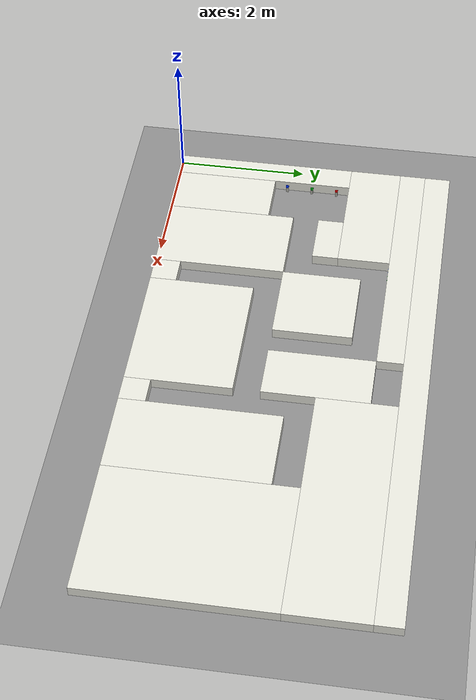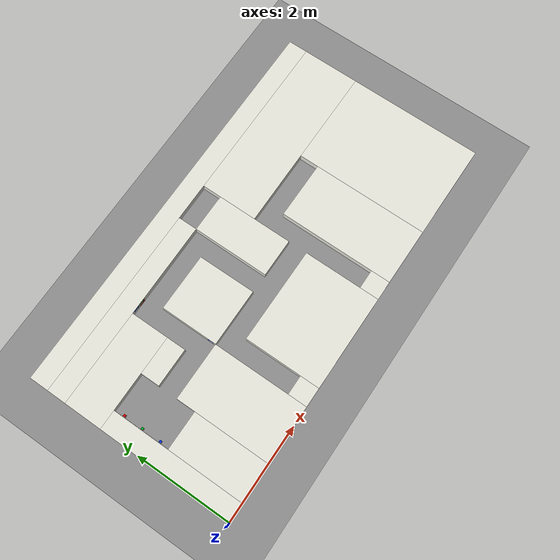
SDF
<sdf version="1.9">
 <world name="ros2_world">
  <model name="ground_plane">
   <static>true</static>
   <link name="link">
    <collision name="collision">
     <geometry><plane><normal>0 0 1</normal><size>30 30</size></plane></geometry>
    </collision>
    <visual name="visual">
     <geometry><plane><normal>0 0 1</normal><size>30 30</size></plane></geometry>
     <material><ambient>0.55 0.55 0.55 1</ambient><diffuse>0.55 0.55 0.55 1</diffuse></material>
    </visual>
   </link>
  </model>
  <model name="paredes">
   <static>true</static>
   <link name="bloque_0">
    <pose>4.2 4.2 0.085 0 0 0</pose>
    <collision name="colision"><geometry><box><size>8.4 0.4 0.17</size></box></geometry></collision>
    <visual name="visual">
     <geometry><box><size>8.4 0.4 0.17</size></box></geometry>
     <material><ambient>0.9 0.9 0.86 1</ambient><diffuse>0.9 0.9 0.86 1</diffuse></material>
    </visual>
   </link>
   <link name="bloque_1">
    <pose>2 3.8 0.085 0 0 0</pose>
    <collision name="colision"><geometry><box><size>4 0.4 0.17</size></box></geometry></collision>
    <visual name="visual">
     <geometry><box><size>4 0.4 0.17</size></box></geometry>
     <material><ambient>0.9 0.9 0.86 1</ambient><diffuse>0.9 0.9 0.86 1</diffuse></material>
    </visual>
   </link>
   <link name="bloque_2">
    <pose>6.6 3.4 0.085 0 0 0</pose>
    <collision name="colision"><geometry><box><size>3.6 1.2 0.17</size></box></geometry></collision>
    <visual name="visual">
     <geometry><box><size>3.6 1.2 0.17</size></box></geometry>
     <material><ambient>0.9 0.9 0.86 1</ambient><diffuse>0.9 0.9 0.86 1</diffuse></material>
    </visual>
   </link>
   <link name="bloque_3">
    <pose>1 3.2 0.085 0 0 0</pose>
    <collision name="colision"><geometry><box><size>2 0.8 0.17</size></box></geometry></collision>
    <visual name="visual">
     <geometry><box><size>2 0.8 0.17</size></box></geometry>
     <material><ambient>0.9 0.9 0.86 1</ambient><diffuse>0.9 0.9 0.86 1</diffuse></material>
    </visual>
   </link>
   <link name="bloque_4">
    <pose>4.4 2.8 0.085 0 0 0</pose>
    <collision name="colision"><geometry><box><size>0.8 1.6 0.17</size></box></geometry></collision>
    <visual name="visual">
     <geometry><box><size>0.8 1.6 0.17</size></box></geometry>
     <material><ambient>0.9 0.9 0.86 1</ambient><diffuse>0.9 0.9 0.86 1</diffuse></material>
    </visual>
   </link>
   <link name="bloque_5">
    <pose>3 2.6 0.085 0 0 0</pose>
    <collision name="colision"><geometry><box><size>1.2 1.2 0.17</size></box></geometry></collision>
    <visual name="visual">
     <geometry><box><size>1.2 1.2 0.17</size></box></geometry>
     <material><ambient>0.9 0.9 0.86 1</ambient><diffuse>0.9 0.9 0.86 1</diffuse></material>
    </visual>
   </link>
   <link name="bloque_6">
    <pose>0.2 1.4 0.085 0 0 0</pose>
    <collision name="colision"><geometry><box><size>0.4 2.8 0.17</size></box></geometry></collision>
    <visual name="visual">
     <geometry><box><size>0.4 2.8 0.17</size></box></geometry>
     <material><ambient>0.9 0.9 0.86 1</ambient><diffuse>0.9 0.9 0.86 1</diffuse></material>
    </visual>
   </link>
   <link name="bloque_7">
    <pose>1.6 2.6 0.085 0 0 0</pose>
    <collision name="colision"><geometry><box><size>0.8 0.4 0.17</size></box></geometry></collision>
    <visual name="visual">
     <geometry><box><size>0.8 0.4 0.17</size></box></geometry>
     <material><ambient>0.9 0.9 0.86 1</ambient><diffuse>0.9 0.9 0.86 1</diffuse></material>
    </visual>
   </link>
   <link name="bloque_8">
    <pose>7.4 1.4 0.085 0 0 0</pose>
    <collision name="colision"><geometry><box><size>2 2.8 0.17</size></box></geometry></collision>
    <visual name="visual">
     <geometry><box><size>2 2.8 0.17</size></box></geometry>
     <material><ambient>0.9 0.9 0.86 1</ambient><diffuse>0.9 0.9 0.86 1</diffuse></material>
    </visual>
   </link>
   <link name="bloque_9">
    <pose>5.8 1.2 0.085 0 0 0</pose>
    <collision name="colision"><geometry><box><size>1.2 2.4 0.17</size></box></geometry></collision>
    <visual name="visual">
     <geometry><box><size>1.2 2.4 0.17</size></box></geometry>
     <material><ambient>0.9 0.9 0.86 1</ambient><diffuse>0.9 0.9 0.86 1</diffuse></material>
    </visual>
   </link>
   <link name="bloque_10">
    <pose>1.8 1 0.085 0 0 0</pose>
    <collision name="colision"><geometry><box><size>1.2 2 0.17</size></box></geometry></collision>
    <visual name="visual">
     <geometry><box><size>1.2 2 0.17</size></box></geometry>
     <material><ambient>0.9 0.9 0.86 1</ambient><diffuse>0.9 0.9 0.86 1</diffuse></material>
    </visual>
   </link>
   <link name="bloque_11">
    <pose>0.8 0.8 0.085 0 0 0</pose>
    <collision name="colision"><geometry><box><size>0.8 1.6 0.17</size></box></geometry></collision>
    <visual name="visual">
     <geometry><box><size>0.8 1.6 0.17</size></box></geometry>
     <material><ambient>0.9 0.9 0.86 1</ambient><diffuse>0.9 0.9 0.86 1</diffuse></material>
    </visual>
   </link>
   <link name="bloque_12">
    <pose>3.8 0.8 0.085 0 0 0</pose>
    <collision name="colision"><geometry><box><size>2 1.6 0.17</size></box></geometry></collision>
    <visual name="visual">
     <geometry><box><size>2 1.6 0.17</size></box></geometry>
     <material><ambient>0.9 0.9 0.86 1</ambient><diffuse>0.9 0.9 0.86 1</diffuse></material>
    </visual>
   </link>
   <link name="bloque_13">
    <pose>2.6 0.2 0.085 0 0 0</pose>
    <collision name="colision"><geometry><box><size>0.4 0.4 0.17</size></box></geometry></collision>
    <visual name="visual">
     <geometry><box><size>0.4 0.4 0.17</size></box></geometry>
     <material><ambient>0.9 0.9 0.86 1</ambient><diffuse>0.9 0.9 0.86 1</diffuse></material>
    </visual>
   </link>
   <link name="bloque_14">
    <pose>5 0.2 0.085 0 0 0</pose>
    <collision name="colision"><geometry><box><size>0.4 0.4 0.17</size></box></geometry></collision>
    <visual name="visual">
     <geometry><box><size>0.4 0.4 0.17</size></box></geometry>
     <material><ambient>0.9 0.9 0.86 1</ambient><diffuse>0.9 0.9 0.86 1</diffuse></material>
    </visual>
   </link>
  </model>
  <model name="flechas">
   <static>true</static>
   <link name="flecha_0">
    <pose>2.12 3.5985 0.115 0 0 0</pose>
    <visual name="p0">
     <pose>-0.025 0 0 0 0 0</pose>
     <geometry><box><size>0.1 0.002 0.03</size></box></geometry>
     <material><ambient>0 0.2 1 1</ambient><diffuse>0 0.2 1 1</diffuse></material>
    </visual>
    <visual name="p1">
     <pose>0.026 0 0 0 0 0</pose>
     <geometry><box><size>0.002 0.002 0.07</size></box></geometry>
     <material><ambient>0 0.2 1 1</ambient><diffuse>0 0.2 1 1</diffuse></material>
    </visual>
    <visual name="p2">
     <pose>0.028 0 0 0 0 0</pose>
     <geometry><box><size>0.002 0.002 0.0672</size></box></geometry>
     <material><ambient>0 0.2 1 1</ambient><diffuse>0 0.2 1 1</diffuse></material>
    </visual>
    <visual name="p3">
     <pose>0.03 0 0 0 0 0</pose>
     <geometry><box><size>0.002 0.002 0.0644</size></box></geometry>
     <material><ambient>0 0.2 1 1</ambient><diffuse>0 0.2 1 1</diffuse></material>
    </visual>
    <visual name="p4">
     <pose>0.032 0 0 0 0 0</pose>
     <geometry><box><size>0.002 0.002 0.0616</size></box></geometry>
     <material><ambient>0 0.2 1 1</ambient><diffuse>0 0.2 1 1</diffuse></material>
    </visual>
    <visual name="p5">
     <pose>0.034 0 0 0 0 0</pose>
     <geometry><box><size>0.002 0.002 0.0588</size></box></geometry>
     <material><ambient>0 0.2 1 1</ambient><diffuse>0 0.2 1 1</diffuse></material>
    </visual>
    <visual name="p6">
     <pose>0.036 0 0 0 0 0</pose>
     <geometry><box><size>0.002 0.002 0.056</size></box></geometry>
     <material><ambient>0 0.2 1 1</ambient><diffuse>0 0.2 1 1</diffuse></material>
    </visual>
    <visual name="p7">
     <pose>0.038 0 0 0 0 0</pose>
     <geometry><box><size>0.002 0.002 0.0532</size></box></geometry>
     <material><ambient>0 0.2 1 1</ambient><diffuse>0 0.2 1 1</diffuse></material>
    </visual>
    <visual name="p8">
     <pose>0.04 0 0 0 0 0</pose>
     <geometry><box><size>0.002 0.002 0.0504</size></box></geometry>
     <material><ambient>0 0.2 1 1</ambient><diffuse>0 0.2 1 1</diffuse></material>
    </visual>
    <visual name="p9">
     <pose>0.042 0 0 0 0 0</pose>
     <geometry><box><size>0.002 0.002 0.0476</size></box></geometry>
     <material><ambient>0 0.2 1 1</ambient><diffuse>0 0.2 1 1</diffuse></material>
    </visual>
    <visual name="p10">
     <pose>0.044 0 0 0 0 0</pose>
     <geometry><box><size>0.002 0.002 0.0448</size></box></geometry>
     <material><ambient>0 0.2 1 1</ambient><diffuse>0 0.2 1 1</diffuse></material>
    </visual>
    <visual name="p11">
     <pose>0.046 0 0 0 0 0</pose>
     <geometry><box><size>0.002 0.002 0.042</size></box></geometry>
     <material><ambient>0 0.2 1 1</ambient><diffuse>0 0.2 1 1</diffuse></material>
    </visual>
    <visual name="p12">
     <pose>0.048 0 0 0 0 0</pose>
     <geometry><box><size>0.002 0.002 0.0392</size></box></geometry>
     <material><ambient>0 0.2 1 1</ambient><diffuse>0 0.2 1 1</diffuse></material>
    </visual>
    <visual name="p13">
     <pose>0.05 0 0 0 0 0</pose>
     <geometry><box><size>0.002 0.002 0.0364</size></box></geometry>
     <material><ambient>0 0.2 1 1</ambient><diffuse>0 0.2 1 1</diffuse></material>
    </visual>
    <visual name="p14">
     <pose>0.052 0 0 0 0 0</pose>
     <geometry><box><size>0.002 0.002 0.0336</size></box></geometry>
     <material><ambient>0 0.2 1 1</ambient><diffuse>0 0.2 1 1</diffuse></material>
    </visual>
    <visual name="p15">
     <pose>0.054 0 0 0 0 0</pose>
     <geometry><box><size>0.002 0.002 0.0308</size></box></geometry>
     <material><ambient>0 0.2 1 1</ambient><diffuse>0 0.2 1 1</diffuse></material>
    </visual>
    <visual name="p16">
     <pose>0.056 0 0 0 0 0</pose>
     <geometry><box><size>0.002 0.002 0.028</size></box></geometry>
     <material><ambient>0 0.2 1 1</ambient><diffuse>0 0.2 1 1</diffuse></material>
    </visual>
    <visual name="p17">
     <pose>0.058 0 0 0 0 0</pose>
     <geometry><box><size>0.002 0.002 0.0252</size></box></geometry>
     <material><ambient>0 0.2 1 1</ambient><diffuse>0 0.2 1 1</diffuse></material>
    </visual>
    <visual name="p18">
     <pose>0.06 0 0 0 0 0</pose>
     <geometry><box><size>0.002 0.002 0.0224</size></box></geometry>
     <material><ambient>0 0.2 1 1</ambient><diffuse>0 0.2 1 1</diffuse></material>
    </visual>
    <visual name="p19">
     <pose>0.062 0 0 0 0 0</pose>
     <geometry><box><size>0.002 0.002 0.0196</size></box></geometry>
     <material><ambient>0 0.2 1 1</ambient><diffuse>0 0.2 1 1</diffuse></material>
    </visual>
    <visual name="p20">
     <pose>0.064 0 0 0 0 0</pose>
     <geometry><box><size>0.002 0.002 0.0168</size></box></geometry>
     <material><ambient>0 0.2 1 1</ambient><diffuse>0 0.2 1 1</diffuse></material>
    </visual>
    <visual name="p21">
     <pose>0.066 0 0 0 0 0</pose>
     <geometry><box><size>0.002 0.002 0.014</size></box></geometry>
     <material><ambient>0 0.2 1 1</ambient><diffuse>0 0.2 1 1</diffuse></material>
    </visual>
    <visual name="p22">
     <pose>0.068 0 0 0 0 0</pose>
     <geometry><box><size>0.002 0.002 0.0112</size></box></geometry>
     <material><ambient>0 0.2 1 1</ambient><diffuse>0 0.2 1 1</diffuse></material>
    </visual>
    <visual name="p23">
     <pose>0.07 0 0 0 0 0</pose>
     <geometry><box><size>0.002 0.002 0.0084</size></box></geometry>
     <material><ambient>0 0.2 1 1</ambient><diffuse>0 0.2 1 1</diffuse></material>
    </visual>
    <visual name="p24">
     <pose>0.072 0 0 0 0 0</pose>
     <geometry><box><size>0.002 0.002 0.0056</size></box></geometry>
     <material><ambient>0 0.2 1 1</ambient><diffuse>0 0.2 1 1</diffuse></material>
    </visual>
    <visual name="p25">
     <pose>0.074 0 0 0 0 0</pose>
     <geometry><box><size>0.002 0.002 0.0028</size></box></geometry>
     <material><ambient>0 0.2 1 1</ambient><diffuse>0 0.2 1 1</diffuse></material>
    </visual>
   </link>
   <link name="flecha_1">
    <pose>2.28 3.5985 0.125 0 0 0</pose>
    <visual name="p0">
     <pose>-0.025 0 0 0 0 0</pose>
     <geometry><box><size>0.1 0.002 0.03</size></box></geometry>
     <material><ambient>0 0.7 0.1 1</ambient><diffuse>0 0.7 0.1 1</diffuse></material>
    </visual>
    <visual name="p1">
     <pose>0.026 0 0 0 0 0</pose>
     <geometry><box><size>0.002 0.002 0.07</size></box></geometry>
     <material><ambient>0 0.7 0.1 1</ambient><diffuse>0 0.7 0.1 1</diffuse></material>
    </visual>
    <visual name="p2">
     <pose>0.028 0 0 0 0 0</pose>
     <geometry><box><size>0.002 0.002 0.0672</size></box></geometry>
     <material><ambient>0 0.7 0.1 1</ambient><diffuse>0 0.7 0.1 1</diffuse></material>
    </visual>
    <visual name="p3">
     <pose>0.03 0 0 0 0 0</pose>
     <geometry><box><size>0.002 0.002 0.0644</size></box></geometry>
     <material><ambient>0 0.7 0.1 1</ambient><diffuse>0 0.7 0.1 1</diffuse></material>
    </visual>
    <visual name="p4">
     <pose>0.032 0 0 0 0 0</pose>
     <geometry><box><size>0.002 0.002 0.0616</size></box></geometry>
     <material><ambient>0 0.7 0.1 1</ambient><diffuse>0 0.7 0.1 1</diffuse></material>
    </visual>
    <visual name="p5">
     <pose>0.034 0 0 0 0 0</pose>
     <geometry><box><size>0.002 0.002 0.0588</size></box></geometry>
     <material><ambient>0 0.7 0.1 1</ambient><diffuse>0 0.7 0.1 1</diffuse></material>
    </visual>
    <visual name="p6">
     <pose>0.036 0 0 0 0 0</pose>
     <geometry><box><size>0.002 0.002 0.056</size></box></geometry>
     <material><ambient>0 0.7 0.1 1</ambient><diffuse>0 0.7 0.1 1</diffuse></material>
    </visual>
    <visual name="p7">
     <pose>0.038 0 0 0 0 0</pose>
     <geometry><box><size>0.002 0.002 0.0532</size></box></geometry>
     <material><ambient>0 0.7 0.1 1</ambient><diffuse>0 0.7 0.1 1</diffuse></material>
    </visual>
    <visual name="p8">
     <pose>0.04 0 0 0 0 0</pose>
     <geometry><box><size>0.002 0.002 0.0504</size></box></geometry>
     <material><ambient>0 0.7 0.1 1</ambient><diffuse>0 0.7 0.1 1</diffuse></material>
    </visual>
    <visual name="p9">
     <pose>0.042 0 0 0 0 0</pose>
     <geometry><box><size>0.002 0.002 0.0476</size></box></geometry>
     <material><ambient>0 0.7 0.1 1</ambient><diffuse>0 0.7 0.1 1</diffuse></material>
    </visual>
    <visual name="p10">
     <pose>0.044 0 0 0 0 0</pose>
     <geometry><box><size>0.002 0.002 0.0448</size></box></geometry>
     <material><ambient>0 0.7 0.1 1</ambient><diffuse>0 0.7 0.1 1</diffuse></material>
    </visual>
    <visual name="p11">
     <pose>0.046 0 0 0 0 0</pose>
     <geometry><box><size>0.002 0.002 0.042</size></box></geometry>
     <material><ambient>0 0.7 0.1 1</ambient><diffuse>0 0.7 0.1 1</diffuse></material>
    </visual>
    <visual name="p12">
     <pose>0.048 0 0 0 0 0</pose>
     <geometry><box><size>0.002 0.002 0.0392</size></box></geometry>
     <material><ambient>0 0.7 0.1 1</ambient><diffuse>0 0.7 0.1 1</diffuse></material>
    </visual>
    <visual name="p13">
     <pose>0.05 0 0 0 0 0</pose>
     <geometry><box><size>0.002 0.002 0.0364</size></box></geometry>
     <material><ambient>0 0.7 0.1 1</ambient><diffuse>0 0.7 0.1 1</diffuse></material>
    </visual>
    <visual name="p14">
     <pose>0.052 0 0 0 0 0</pose>
     <geometry><box><size>0.002 0.002 0.0336</size></box></geometry>
     <material><ambient>0 0.7 0.1 1</ambient><diffuse>0 0.7 0.1 1</diffuse></material>
    </visual>
    <visual name="p15">
     <pose>0.054 0 0 0 0 0</pose>
     <geometry><box><size>0.002 0.002 0.0308</size></box></geometry>
     <material><ambient>0 0.7 0.1 1</ambient><diffuse>0 0.7 0.1 1</diffuse></material>
    </visual>
    <visual name="p16">
     <pose>0.056 0 0 0 0 0</pose>
     <geometry><box><size>0.002 0.002 0.028</size></box></geometry>
     <material><ambient>0 0.7 0.1 1</ambient><diffuse>0 0.7 0.1 1</diffuse></material>
    </visual>
    <visual name="p17">
     <pose>0.058 0 0 0 0 0</pose>
     <geometry><box><size>0.002 0.002 0.0252</size></box></geometry>
     <material><ambient>0 0.7 0.1 1</ambient><diffuse>0 0.7 0.1 1</diffuse></material>
    </visual>
    <visual name="p18">
     <pose>0.06 0 0 0 0 0</pose>
     <geometry><box><size>0.002 0.002 0.0224</size></box></geometry>
     <material><ambient>0 0.7 0.1 1</ambient><diffuse>0 0.7 0.1 1</diffuse></material>
    </visual>
    <visual name="p19">
     <pose>0.062 0 0 0 0 0</pose>
     <geometry><box><size>0.002 0.002 0.0196</size></box></geometry>
     <material><ambient>0 0.7 0.1 1</ambient><diffuse>0 0.7 0.1 1</diffuse></material>
    </visual>
    <visual name="p20">
     <pose>0.064 0 0 0 0 0</pose>
     <geometry><box><size>0.002 0.002 0.0168</size></box></geometry>
     <material><ambient>0 0.7 0.1 1</ambient><diffuse>0 0.7 0.1 1</diffuse></material>
    </visual>
    <visual name="p21">
     <pose>0.066 0 0 0 0 0</pose>
     <geometry><box><size>0.002 0.002 0.014</size></box></geometry>
     <material><ambient>0 0.7 0.1 1</ambient><diffuse>0 0.7 0.1 1</diffuse></material>
    </visual>
    <visual name="p22">
     <pose>0.068 0 0 0 0 0</pose>
     <geometry><box><size>0.002 0.002 0.0112</size></box></geometry>
     <material><ambient>0 0.7 0.1 1</ambient><diffuse>0 0.7 0.1 1</diffuse></material>
    </visual>
    <visual name="p23">
     <pose>0.07 0 0 0 0 0</pose>
     <geometry><box><size>0.002 0.002 0.0084</size></box></geometry>
     <material><ambient>0 0.7 0.1 1</ambient><diffuse>0 0.7 0.1 1</diffuse></material>
    </visual>
    <visual name="p24">
     <pose>0.072 0 0 0 0 0</pose>
     <geometry><box><size>0.002 0.002 0.0056</size></box></geometry>
     <material><ambient>0 0.7 0.1 1</ambient><diffuse>0 0.7 0.1 1</diffuse></material>
    </visual>
    <visual name="p25">
     <pose>0.074 0 0 0 0 0</pose>
     <geometry><box><size>0.002 0.002 0.0028</size></box></geometry>
     <material><ambient>0 0.7 0.1 1</ambient><diffuse>0 0.7 0.1 1</diffuse></material>
    </visual>
   </link>
   <link name="flecha_2">
    <pose>2.28 3.5985 0.045 0 0 0</pose>
    <visual name="p0">
     <pose>-0.025 0 0 0 0 0</pose>
     <geometry><box><size>0.1 0.002 0.03</size></box></geometry>
     <material><ambient>1 0 0 1</ambient><diffuse>1 0 0 1</diffuse></material>
    </visual>
    <visual name="p1">
     <pose>0.026 0 0 0 0 0</pose>
     <geometry><box><size>0.002 0.002 0.07</size></box></geometry>
     <material><ambient>1 0 0 1</ambient><diffuse>1 0 0 1</diffuse></material>
    </visual>
    <visual name="p2">
     <pose>0.028 0 0 0 0 0</pose>
     <geometry><box><size>0.002 0.002 0.0672</size></box></geometry>
     <material><ambient>1 0 0 1</ambient><diffuse>1 0 0 1</diffuse></material>
    </visual>
    <visual name="p3">
     <pose>0.03 0 0 0 0 0</pose>
     <geometry><box><size>0.002 0.002 0.0644</size></box></geometry>
     <material><ambient>1 0 0 1</ambient><diffuse>1 0 0 1</diffuse></material>
    </visual>
    <visual name="p4">
     <pose>0.032 0 0 0 0 0</pose>
     <geometry><box><size>0.002 0.002 0.0616</size></box></geometry>
     <material><ambient>1 0 0 1</ambient><diffuse>1 0 0 1</diffuse></material>
    </visual>
    <visual name="p5">
     <pose>0.034 0 0 0 0 0</pose>
     <geometry><box><size>0.002 0.002 0.0588</size></box></geometry>
     <material><ambient>1 0 0 1</ambient><diffuse>1 0 0 1</diffuse></material>
    </visual>
    <visual name="p6">
     <pose>0.036 0 0 0 0 0</pose>
     <geometry><box><size>0.002 0.002 0.056</size></box></geometry>
     <material><ambient>1 0 0 1</ambient><diffuse>1 0 0 1</diffuse></material>
    </visual>
    <visual name="p7">
     <pose>0.038 0 0 0 0 0</pose>
     <geometry><box><size>0.002 0.002 0.0532</size></box></geometry>
     <material><ambient>1 0 0 1</ambient><diffuse>1 0 0 1</diffuse></material>
    </visual>
    <visual name="p8">
     <pose>0.04 0 0 0 0 0</pose>
     <geometry><box><size>0.002 0.002 0.0504</size></box></geometry>
     <material><ambient>1 0 0 1</ambient><diffuse>1 0 0 1</diffuse></material>
    </visual>
    <visual name="p9">
     <pose>0.042 0 0 0 0 0</pose>
     <geometry><box><size>0.002 0.002 0.0476</size></box></geometry>
     <material><ambient>1 0 0 1</ambient><diffuse>1 0 0 1</diffuse></material>
    </visual>
    <visual name="p10">
     <pose>0.044 0 0 0 0 0</pose>
     <geometry><box><size>0.002 0.002 0.0448</size></box></geometry>
     <material><ambient>1 0 0 1</ambient><diffuse>1 0 0 1</diffuse></material>
    </visual>
    <visual name="p11">
     <pose>0.046 0 0 0 0 0</pose>
     <geometry><box><size>0.002 0.002 0.042</size></box></geometry>
     <material><ambient>1 0 0 1</ambient><diffuse>1 0 0 1</diffuse></material>
    </visual>
    <visual name="p12">
     <pose>0.048 0 0 0 0 0</pose>
     <geometry><box><size>0.002 0.002 0.0392</size></box></geometry>
     <material><ambient>1 0 0 1</ambient><diffuse>1 0 0 1</diffuse></material>
    </visual>
    <visual name="p13">
     <pose>0.05 0 0 0 0 0</pose>
     <geometry><box><size>0.002 0.002 0.0364</size></box></geometry>
     <material><ambient>1 0 0 1</ambient><diffuse>1 0 0 1</diffuse></material>
    </visual>
    <visual name="p14">
     <pose>0.052 0 0 0 0 0</pose>
     <geometry><box><size>0.002 0.002 0.0336</size></box></geometry>
     <material><ambient>1 0 0 1</ambient><diffuse>1 0 0 1</diffuse></material>
    </visual>
    <visual name="p15">
     <pose>0.054 0 0 0 0 0</pose>
     <geometry><box><size>0.002 0.002 0.0308</size></box></geometry>
     <material><ambient>1 0 0 1</ambient><diffuse>1 0 0 1</diffuse></material>
    </visual>
    <visual name="p16">
     <pose>0.056 0 0 0 0 0</pose>
     <geometry><box><size>0.002 0.002 0.028</size></box></geometry>
     <material><ambient>1 0 0 1</ambient><diffuse>1 0 0 1</diffuse></material>
    </visual>
    <visual name="p17">
     <pose>0.058 0 0 0 0 0</pose>
     <geometry><box><size>0.002 0.002 0.0252</size></box></geometry>
     <material><ambient>1 0 0 1</ambient><diffuse>1 0 0 1</diffuse></material>
    </visual>
    <visual name="p18">
     <pose>0.06 0 0 0 0 0</pose>
     <geometry><box><size>0.002 0.002 0.0224</size></box></geometry>
     <material><ambient>1 0 0 1</ambient><diffuse>1 0 0 1</diffuse></material>
    </visual>
    <visual name="p19">
     <pose>0.062 0 0 0 0 0</pose>
     <geometry><box><size>0.002 0.002 0.0196</size></box></geometry>
     <material><ambient>1 0 0 1</ambient><diffuse>1 0 0 1</diffuse></material>
    </visual>
    <visual name="p20">
     <pose>0.064 0 0 0 0 0</pose>
     <geometry><box><size>0.002 0.002 0.0168</size></box></geometry>
     <material><ambient>1 0 0 1</ambient><diffuse>1 0 0 1</diffuse></material>
    </visual>
    <visual name="p21">
     <pose>0.066 0 0 0 0 0</pose>
     <geometry><box><size>0.002 0.002 0.014</size></box></geometry>
     <material><ambient>1 0 0 1</ambient><diffuse>1 0 0 1</diffuse></material>
    </visual>
    <visual name="p22">
     <pose>0.068 0 0 0 0 0</pose>
     <geometry><box><size>0.002 0.002 0.0112</size></box></geometry>
     <material><ambient>1 0 0 1</ambient><diffuse>1 0 0 1</diffuse></material>
    </visual>
    <visual name="p23">
     <pose>0.07 0 0 0 0 0</pose>
     <geometry><box><size>0.002 0.002 0.0084</size></box></geometry>
     <material><ambient>1 0 0 1</ambient><diffuse>1 0 0 1</diffuse></material>
    </visual>
    <visual name="p24">
     <pose>0.072 0 0 0 0 0</pose>
     <geometry><box><size>0.002 0.002 0.0056</size></box></geometry>
     <material><ambient>1 0 0 1</ambient><diffuse>1 0 0 1</diffuse></material>
    </visual>
    <visual name="p25">
     <pose>0.074 0 0 0 0 0</pose>
     <geometry><box><size>0.002 0.002 0.0028</size></box></geometry>
     <material><ambient>1 0 0 1</ambient><diffuse>1 0 0 1</diffuse></material>
    </visual>
   </link>
   <link name="flecha_7">
    <pose>2.3985 2.12 0.115 0 0 1.5708</pose>
    <visual name="p0">
     <pose>-0.025 0 0 0 0 0</pose>
     <geometry><box><size>0.1 0.002 0.03</size></box></geometry>
     <material><ambient>0 0.2 1 1</ambient><diffuse>0 0.2 1 1</diffuse></material>
    </visual>
    <visual name="p1">
     <pose>0.026 0 0 0 0 0</pose>
     <geometry><box><size>0.002 0.002 0.07</size></box></geometry>
     <material><ambient>0 0.2 1 1</ambient><diffuse>0 0.2 1 1</diffuse></material>
    </visual>
    <visual name="p2">
     <pose>0.028 0 0 0 0 0</pose>
     <geometry><box><size>0.002 0.002 0.0672</size></box></geometry>
     <material><ambient>0 0.2 1 1</ambient><diffuse>0 0.2 1 1</diffuse></material>
    </visual>
    <visual name="p3">
     <pose>0.03 0 0 0 0 0</pose>
     <geometry><box><size>0.002 0.002 0.0644</size></box></geometry>
     <material><ambient>0 0.2 1 1</ambient><diffuse>0 0.2 1 1</diffuse></material>
    </visual>
    <visual name="p4">
     <pose>0.032 0 0 0 0 0</pose>
     <geometry><box><size>0.002 0.002 0.0616</size></box></geometry>
     <material><ambient>0 0.2 1 1</ambient><diffuse>0 0.2 1 1</diffuse></material>
    </visual>
    <visual name="p5">
     <pose>0.034 0 0 0 0 0</pose>
     <geometry><box><size>0.002 0.002 0.0588</size></box></geometry>
     <material><ambient>0 0.2 1 1</ambient><diffuse>0 0.2 1 1</diffuse></material>
    </visual>
    <visual name="p6">
     <pose>0.036 0 0 0 0 0</pose>
     <geometry><box><size>0.002 0.002 0.056</size></box></geometry>
     <material><ambient>0 0.2 1 1</ambient><diffuse>0 0.2 1 1</diffuse></material>
    </visual>
    <visual name="p7">
     <pose>0.038 0 0 0 0 0</pose>
     <geometry><box><size>0.002 0.002 0.0532</size></box></geometry>
     <material><ambient>0 0.2 1 1</ambient><diffuse>0 0.2 1 1</diffuse></material>
    </visual>
    <visual name="p8">
     <pose>0.04 0 0 0 0 0</pose>
     <geometry><box><size>0.002 0.002 0.0504</size></box></geometry>
     <material><ambient>0 0.2 1 1</ambient><diffuse>0 0.2 1 1</diffuse></material>
    </visual>
    <visual name="p9">
     <pose>0.042 0 0 0 0 0</pose>
     <geometry><box><size>0.002 0.002 0.0476</size></box></geometry>
     <material><ambient>0 0.2 1 1</ambient><diffuse>0 0.2 1 1</diffuse></material>
    </visual>
    <visual name="p10">
     <pose>0.044 0 0 0 0 0</pose>
     <geometry><box><size>0.002 0.002 0.0448</size></box></geometry>
     <material><ambient>0 0.2 1 1</ambient><diffuse>0 0.2 1 1</diffuse></material>
    </visual>
    <visual name="p11">
     <pose>0.046 0 0 0 0 0</pose>
     <geometry><box><size>0.002 0.002 0.042</size></box></geometry>
     <material><ambient>0 0.2 1 1</ambient><diffuse>0 0.2 1 1</diffuse></material>
    </visual>
    <visual name="p12">
     <pose>0.048 0 0 0 0 0</pose>
     <geometry><box><size>0.002 0.002 0.0392</size></box></geometry>
     <material><ambient>0 0.2 1 1</ambient><diffuse>0 0.2 1 1</diffuse></material>
    </visual>
    <visual name="p13">
     <pose>0.05 0 0 0 0 0</pose>
     <geometry><box><size>0.002 0.002 0.0364</size></box></geometry>
     <material><ambient>0 0.2 1 1</ambient><diffuse>0 0.2 1 1</diffuse></material>
    </visual>
    <visual name="p14">
     <pose>0.052 0 0 0 0 0</pose>
     <geometry><box><size>0.002 0.002 0.0336</size></box></geometry>
     <material><ambient>0 0.2 1 1</ambient><diffuse>0 0.2 1 1</diffuse></material>
    </visual>
    <visual name="p15">
     <pose>0.054 0 0 0 0 0</pose>
     <geometry><box><size>0.002 0.002 0.0308</size></box></geometry>
     <material><ambient>0 0.2 1 1</ambient><diffuse>0 0.2 1 1</diffuse></material>
    </visual>
    <visual name="p16">
     <pose>0.056 0 0 0 0 0</pose>
     <geometry><box><size>0.002 0.002 0.028</size></box></geometry>
     <material><ambient>0 0.2 1 1</ambient><diffuse>0 0.2 1 1</diffuse></material>
    </visual>
    <visual name="p17">
     <pose>0.058 0 0 0 0 0</pose>
     <geometry><box><size>0.002 0.002 0.0252</size></box></geometry>
     <material><ambient>0 0.2 1 1</ambient><diffuse>0 0.2 1 1</diffuse></material>
    </visual>
    <visual name="p18">
     <pose>0.06 0 0 0 0 0</pose>
     <geometry><box><size>0.002 0.002 0.0224</size></box></geometry>
     <material><ambient>0 0.2 1 1</ambient><diffuse>0 0.2 1 1</diffuse></material>
    </visual>
    <visual name="p19">
     <pose>0.062 0 0 0 0 0</pose>
     <geometry><box><size>0.002 0.002 0.0196</size></box></geometry>
     <material><ambient>0 0.2 1 1</ambient><diffuse>0 0.2 1 1</diffuse></material>
    </visual>
    <visual name="p20">
     <pose>0.064 0 0 0 0 0</pose>
     <geometry><box><size>0.002 0.002 0.0168</size></box></geometry>
     <material><ambient>0 0.2 1 1</ambient><diffuse>0 0.2 1 1</diffuse></material>
    </visual>
    <visual name="p21">
     <pose>0.066 0 0 0 0 0</pose>
     <geometry><box><size>0.002 0.002 0.014</size></box></geometry>
     <material><ambient>0 0.2 1 1</ambient><diffuse>0 0.2 1 1</diffuse></material>
    </visual>
    <visual name="p22">
     <pose>0.068 0 0 0 0 0</pose>
     <geometry><box><size>0.002 0.002 0.0112</size></box></geometry>
     <material><ambient>0 0.2 1 1</ambient><diffuse>0 0.2 1 1</diffuse></material>
    </visual>
    <visual name="p23">
     <pose>0.07 0 0 0 0 0</pose>
     <geometry><box><size>0.002 0.002 0.0084</size></box></geometry>
     <material><ambient>0 0.2 1 1</ambient><diffuse>0 0.2 1 1</diffuse></material>
    </visual>
    <visual name="p24">
     <pose>0.072 0 0 0 0 0</pose>
     <geometry><box><size>0.002 0.002 0.0056</size></box></geometry>
     <material><ambient>0 0.2 1 1</ambient><diffuse>0 0.2 1 1</diffuse></material>
    </visual>
    <visual name="p25">
     <pose>0.074 0 0 0 0 0</pose>
     <geometry><box><size>0.002 0.002 0.0028</size></box></geometry>
     <material><ambient>0 0.2 1 1</ambient><diffuse>0 0.2 1 1</diffuse></material>
    </visual>
   </link>
  </model>
  <model name="soporte_canasto_rojo">
   <static>true</static>
   <pose>0.432 2.6 0.04425 0 0 0</pose>
   <link name="link">
    <collision name="colision"><geometry><box><size>0.036 0.036 0.0885</size></box></geometry></collision>
    <visual name="visual">
     <geometry><box><size>0.036 0.036 0.0885</size></box></geometry>
     <material><ambient>0.7 0.7 0.66 1</ambient><diffuse>0.7 0.7 0.66 1</diffuse></material>
    </visual>
   </link>
  </model>
  <model name="canasto_rojo">
   <static>true</static>
   <pose>0.432 2.6 0.0885 0 0 0</pose>
   <link name="link">
    <collision name="c_fondo">
     <pose>0 0 0.0005 0 0 0</pose>
     <geometry><box><size>0.044 0.044 0.001</size></box></geometry>
     <surface><friction><ode><mu>1</mu><mu2>1</mu2></ode></friction></surface>
    </collision>
    <visual name="v_fondo">
     <pose>0 0 0.0005 0 0 0</pose>
     <geometry><box><size>0.044 0.044 0.001</size></box></geometry>
     <material><ambient>1 0 0 1</ambient><diffuse>1 0 0 1</diffuse></material>
    </visual>
    <collision name="c_pared_n">
     <pose>0 0.021 0.01 0 0 0</pose>
     <geometry><box><size>0.044 0.002 0.02</size></box></geometry>
     <surface><friction><ode><mu>1</mu><mu2>1</mu2></ode></friction></surface>
    </collision>
    <visual name="v_pared_n">
     <pose>0 0.021 0.01 0 0 0</pose>
     <geometry><box><size>0.044 0.002 0.02</size></box></geometry>
     <material><ambient>1 0 0 1</ambient><diffuse>1 0 0 1</diffuse></material>
    </visual>
    <collision name="c_pared_s">
     <pose>0 -0.021 0.01 0 0 0</pose>
     <geometry><box><size>0.044 0.002 0.02</size></box></geometry>
     <surface><friction><ode><mu>1</mu><mu2>1</mu2></ode></friction></surface>
    </collision>
    <visual name="v_pared_s">
     <pose>0 -0.021 0.01 0 0 0</pose>
     <geometry><box><size>0.044 0.002 0.02</size></box></geometry>
     <material><ambient>1 0 0 1</ambient><diffuse>1 0 0 1</diffuse></material>
    </visual>
    <collision name="c_pared_e">
     <pose>0.021 0 0.01 0 0 0</pose>
     <geometry><box><size>0.002 0.04 0.02</size></box></geometry>
     <surface><friction><ode><mu>1</mu><mu2>1</mu2></ode></friction></surface>
    </collision>
    <visual name="v_pared_e">
     <pose>0.021 0 0.01 0 0 0</pose>
     <geometry><box><size>0.002 0.04 0.02</size></box></geometry>
     <material><ambient>1 0 0 1</ambient><diffuse>1 0 0 1</diffuse></material>
    </visual>
    <collision name="c_pared_o">
     <pose>-0.021 0 0.01 0 0 0</pose>
     <geometry><box><size>0.002 0.04 0.02</size></box></geometry>
     <surface><friction><ode><mu>1</mu><mu2>1</mu2></ode></friction></surface>
    </collision>
    <visual name="v_pared_o">
     <pose>-0.021 0 0.01 0 0 0</pose>
     <geometry><box><size>0.002 0.04 0.02</size></box></geometry>
     <material><ambient>1 0 0 1</ambient><diffuse>1 0 0 1</diffuse></material>
    </visual>
   </link>
  </model>
  <model name="soporte_canasto_verde">
   <static>true</static>
   <pose>0.432 2.2 0.04425 0 0 0</pose>
   <link name="link">
    <collision name="colision"><geometry><box><size>0.036 0.036 0.0885</size></box></geometry></collision>
    <visual name="visual">
     <geometry><box><size>0.036 0.036 0.0885</size></box></geometry>
     <material><ambient>0.7 0.7 0.66 1</ambient><diffuse>0.7 0.7 0.66 1</diffuse></material>
    </visual>
   </link>
  </model>
  <model name="canasto_verde">
   <static>true</static>
   <pose>0.432 2.2 0.0885 0 0 0</pose>
   <link name="link">
    <collision name="c_fondo">
     <pose>0 0 0.0005 0 0 0</pose>
     <geometry><box><size>0.044 0.044 0.001</size></box></geometry>
     <surface><friction><ode><mu>1</mu><mu2>1</mu2></ode></friction></surface>
    </collision>
    <visual name="v_fondo">
     <pose>0 0 0.0005 0 0 0</pose>
     <geometry><box><size>0.044 0.044 0.001</size></box></geometry>
     <material><ambient>0 0.7 0.1 1</ambient><diffuse>0 0.7 0.1 1</diffuse></material>
    </visual>
    <collision name="c_pared_n">
     <pose>0 0.021 0.01 0 0 0</pose>
     <geometry><box><size>0.044 0.002 0.02</size></box></geometry>
     <surface><friction><ode><mu>1</mu><mu2>1</mu2></ode></friction></surface>
    </collision>
    <visual name="v_pared_n">
     <pose>0 0.021 0.01 0 0 0</pose>
     <geometry><box><size>0.044 0.002 0.02</size></box></geometry>
     <material><ambient>0 0.7 0.1 1</ambient><diffuse>0 0.7 0.1 1</diffuse></material>
    </visual>
    <collision name="c_pared_s">
     <pose>0 -0.021 0.01 0 0 0</pose>
     <geometry><box><size>0.044 0.002 0.02</size></box></geometry>
     <surface><friction><ode><mu>1</mu><mu2>1</mu2></ode></friction></surface>
    </collision>
    <visual name="v_pared_s">
     <pose>0 -0.021 0.01 0 0 0</pose>
     <geometry><box><size>0.044 0.002 0.02</size></box></geometry>
     <material><ambient>0 0.7 0.1 1</ambient><diffuse>0 0.7 0.1 1</diffuse></material>
    </visual>
    <collision name="c_pared_e">
     <pose>0.021 0 0.01 0 0 0</pose>
     <geometry><box><size>0.002 0.04 0.02</size></box></geometry>
     <surface><friction><ode><mu>1</mu><mu2>1</mu2></ode></friction></surface>
    </collision>
    <visual name="v_pared_e">
     <pose>0.021 0 0.01 0 0 0</pose>
     <geometry><box><size>0.002 0.04 0.02</size></box></geometry>
     <material><ambient>0 0.7 0.1 1</ambient><diffuse>0 0.7 0.1 1</diffuse></material>
    </visual>
    <collision name="c_pared_o">
     <pose>-0.021 0 0.01 0 0 0</pose>
     <geometry><box><size>0.002 0.04 0.02</size></box></geometry>
     <surface><friction><ode><mu>1</mu><mu2>1</mu2></ode></friction></surface>
    </collision>
    <visual name="v_pared_o">
     <pose>-0.021 0 0.01 0 0 0</pose>
     <geometry><box><size>0.002 0.04 0.02</size></box></geometry>
     <material><ambient>0 0.7 0.1 1</ambient><diffuse>0 0.7 0.1 1</diffuse></material>
    </visual>
   </link>
  </model>
  <model name="soporte_canasto_azul">
   <static>true</static>
   <pose>0.432 1.8 0.04425 0 0 0</pose>
   <link name="link">
    <collision name="colision"><geometry><box><size>0.036 0.036 0.0885</size></box></geometry></collision>
    <visual name="visual">
     <geometry><box><size>0.036 0.036 0.0885</size></box></geometry>
     <material><ambient>0.7 0.7 0.66 1</ambient><diffuse>0.7 0.7 0.66 1</diffuse></material>
    </visual>
   </link>
  </model>
  <model name="canasto_azul">
   <static>true</static>
   <pose>0.432 1.8 0.0885 0 0 0</pose>
   <link name="link">
    <collision name="c_fondo">
     <pose>0 0 0.0005 0 0 0</pose>
     <geometry><box><size>0.044 0.044 0.001</size></box></geometry>
     <surface><friction><ode><mu>1</mu><mu2>1</mu2></ode></friction></surface>
    </collision>
    <visual name="v_fondo">
     <pose>0 0 0.0005 0 0 0</pose>
     <geometry><box><size>0.044 0.044 0.001</size></box></geometry>
     <material><ambient>0 0.2 1 1</ambient><diffuse>0 0.2 1 1</diffuse></material>
    </visual>
    <collision name="c_pared_n">
     <pose>0 0.021 0.01 0 0 0</pose>
     <geometry><box><size>0.044 0.002 0.02</size></box></geometry>
     <surface><friction><ode><mu>1</mu><mu2>1</mu2></ode></friction></surface>
    </collision>
    <visual name="v_pared_n">
     <pose>0 0.021 0.01 0 0 0</pose>
     <geometry><box><size>0.044 0.002 0.02</size></box></geometry>
     <material><ambient>0 0.2 1 1</ambient><diffuse>0 0.2 1 1</diffuse></material>
    </visual>
    <collision name="c_pared_s">
     <pose>0 -0.021 0.01 0 0 0</pose>
     <geometry><box><size>0.044 0.002 0.02</size></box></geometry>
     <surface><friction><ode><mu>1</mu><mu2>1</mu2></ode></friction></surface>
    </collision>
    <visual name="v_pared_s">
     <pose>0 -0.021 0.01 0 0 0</pose>
     <geometry><box><size>0.044 0.002 0.02</size></box></geometry>
     <material><ambient>0 0.2 1 1</ambient><diffuse>0 0.2 1 1</diffuse></material>
    </visual>
    <collision name="c_pared_e">
     <pose>0.021 0 0.01 0 0 0</pose>
     <geometry><box><size>0.002 0.04 0.02</size></box></geometry>
     <surface><friction><ode><mu>1</mu><mu2>1</mu2></ode></friction></surface>
    </collision>
    <visual name="v_pared_e">
     <pose>0.021 0 0.01 0 0 0</pose>
     <geometry><box><size>0.002 0.04 0.02</size></box></geometry>
     <material><ambient>0 0.2 1 1</ambient><diffuse>0 0.2 1 1</diffuse></material>
    </visual>
    <collision name="c_pared_o">
     <pose>-0.021 0 0.01 0 0 0</pose>
     <geometry><box><size>0.002 0.04 0.02</size></box></geometry>
     <surface><friction><ode><mu>1</mu><mu2>1</mu2></ode></friction></surface>
    </collision>
    <visual name="v_pared_o">
     <pose>-0.021 0 0.01 0 0 0</pose>
     <geometry><box><size>0.002 0.04 0.02</size></box></geometry>
     <material><ambient>0 0.2 1 1</ambient><diffuse>0 0.2 1 1</diffuse></material>
    </visual>
   </link>
  </model>
 </world>
</sdf>
